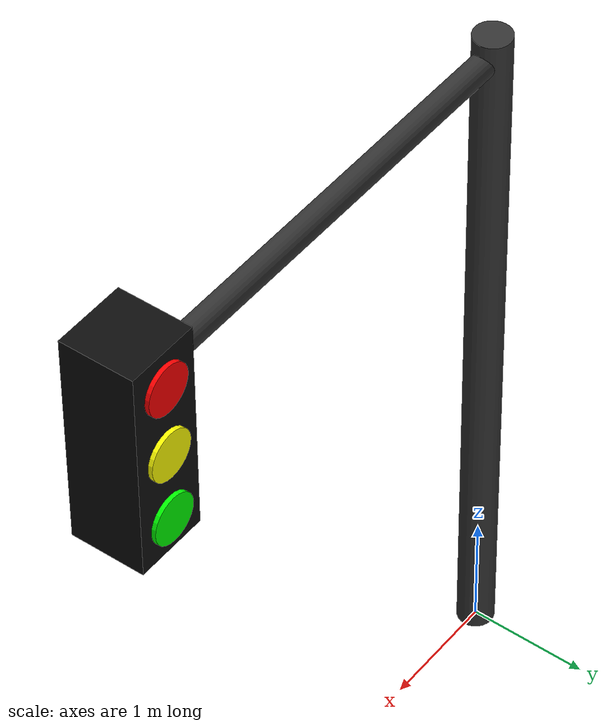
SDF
<?xml version="1.0" ?>
<sdf version="1.8">
  <model name="detailed_traffic_light">
    <static>true</static>

    <!-- Vertical Pole -->
    <link name="pole">
      <pose>0 0 3 0 0 0</pose>
      <visual name="pole_visual">
        <geometry><cylinder><radius>0.15</radius><length>6.0</length></cylinder></geometry>
        <material>
          <ambient>0.2 0.2 0.2 1</ambient>
          <diffuse>0.2 0.2 0.2 1</diffuse>
          <specular>0.5 0.5 0.5 1</specular>
        </material>
      </visual>
      <collision name="pole_collision">
        <geometry><cylinder><radius>0.15</radius><length>6.0</length></cylinder></geometry>
      </collision>
    </link>

    <!-- Horizontal Arm -->
    <link name="arm">
      <pose>2.0 0 5.8 0 1.5707 0</pose>
      <visual name="arm_visual">
        <geometry><cylinder><radius>0.1</radius><length>4.0</length></cylinder></geometry>
        <material>
          <ambient>0.2 0.2 0.2 1</ambient>
          <diffuse>0.2 0.2 0.2 1</diffuse>
        </material>
      </visual>
    </link>

    <!-- Light Housing (Rotated 90 degrees to face traffic) -->
    <link name="housing">
      <pose>4.0 0 5.4 0 0 1.5708</pose>
      <visual name="housing_visual">
        <geometry><box><size>0.6 0.6 1.8</size></box></geometry>
        <material>
          <ambient>0.05 0.05 0.05 1</ambient>
          <diffuse>0.05 0.05 0.05 1</diffuse>
        </material>
      </visual>

      <!-- Red Light Visual -->
      <visual name="red_light">
        <pose>0.31 0 0.6 0 1.5707 0</pose>
        <geometry><cylinder><radius>0.2</radius><length>0.05</length></cylinder></geometry>
        <material>
          <ambient>1 0 0 1</ambient>
          <diffuse>1 0 0 1</diffuse>
          <emissive>1 0 0 1</emissive>
        </material>
      </visual>
      <light name="red_lamp" type="point">
        <pose>0.4 0 0.6 0 0 0</pose>
        <attenuation>
          <range>5</range>
          <linear>0.05</linear>
        </attenuation>
        <diffuse>1 0 0 1</diffuse>
        <specular>1 0 0 1</specular>
        <intensity>0</intensity>
      </light>

      <!-- Yellow Light Visual -->
      <visual name="yellow_light">
        <pose>0.31 0 0 0 1.5707 0</pose>
        <geometry><cylinder><radius>0.2</radius><length>0.05</length></cylinder></geometry>
        <material>
          <ambient>1 1 0 1</ambient>
          <diffuse>1 1 0 1</diffuse>
          <emissive>1 1 0 1</emissive>
        </material>
      </visual>
      <light name="yellow_lamp" type="point">
        <pose>0.4 0 0 0 0 0</pose>
        <attenuation>
          <range>5</range>
          <linear>0.05</linear>
        </attenuation>
        <diffuse>1 1 0 1</diffuse>
        <specular>1 1 0 1</specular>
        <intensity>0</intensity>
      </light>

      <!-- Green Light Visual -->
      <visual name="green_light">
        <pose>0.31 0 -0.6 0 1.5707 0</pose>
        <geometry><cylinder><radius>0.2</radius><length>0.05</length></cylinder></geometry>
        <material>
          <ambient>0 1 0 1</ambient>
          <diffuse>0 1 0 1</diffuse>
          <emissive>0 1 0 1</emissive>
        </material>
      </visual>
      <light name="green_lamp" type="point">
        <pose>0.4 0 -0.6 0 0 0</pose>
        <attenuation>
          <range>5</range>
          <linear>0.05</linear>
        </attenuation>
        <diffuse>0 1 0 1</diffuse>
        <specular>0 1 0 1</specular>
        <intensity>1</intensity>
      </light>
    </link>
  </model>
</sdf>
